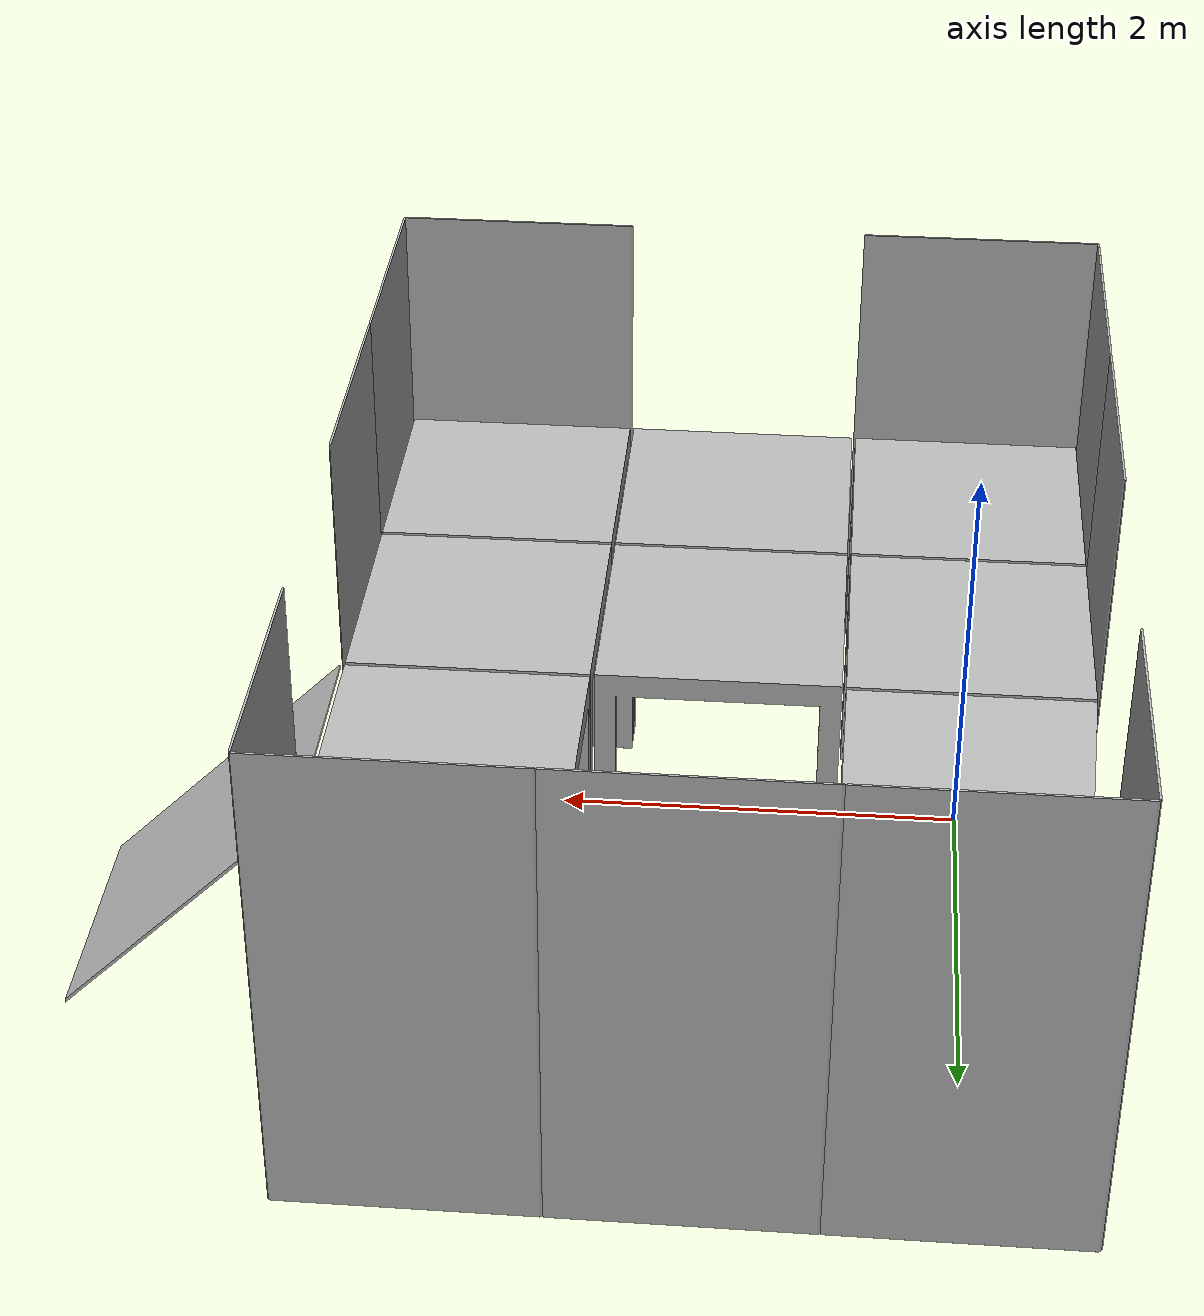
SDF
<sdf version="1.4">
 <world name="default">
  <scene><ambient>0.5 0.5 0.5 1</ambient><background>0.5 0.5 0.5 1</background><shadows>false</shadows></scene>
  <physics type="ode">
   <gravity>0 0 -9.81</gravity>
   <ode>
    <solver><type>quick</type><iters>100</iters><sor>1.3</sor></solver>
    <constraints>
     <cfm>0.0</cfm>
     <erp>0.2</erp>
     <contact_max_correcting_vel>100.0</contact_max_correcting_vel>
     <contact_surface_layer>0.001</contact_surface_layer>
    </constraints>
   </ode>
   <real_time_update_rate>1000</real_time_update_rate>
   <max_step_size>0.001</max_step_size>
  </physics>
  <light type="directional" name="directional_light_1">
   <cast_shadows>false</cast_shadows>
   <pose>0 0 30 0.1 0.1 0</pose>
   <diffuse>1.0 1.0 1.0 1</diffuse>
   <specular>.1 .1 .1 1</specular>
   <attenuation><range>300</range></attenuation>
   <direction>0.1 0.1 -1</direction>
  </light>
  <model name="elevated_floor_120_1">
   <static>true</static>
   <link name="elevated_floor_120_1_link">
    <collision name="elevated_floor_120_1_collision">
     <geometry><mesh><uri>file://elevated_floor_120.dae</uri><scale>1 1 1</scale></mesh></geometry>
    </collision>
    <visual name="elevated_floor_120_1_visual">
     <cast_shadows>false</cast_shadows>
     <geometry><mesh><uri>file://elevated_floor_120.dae</uri><scale>1 1 1</scale></mesh></geometry>
    </visual>
   </link>
  </model>
  <model name="elevated_floor_120_2">
   <static>true</static>
   <link name="elevated_floor_120_2_link">
    <pose>1.2 0 0 0 0 0</pose>
    <collision name="elevated_floor_120_2_collision">
     <geometry><mesh><uri>file://elevated_floor_120.dae</uri><scale>1 1 1</scale></mesh></geometry>
    </collision>
    <visual name="elevated_floor_120_2_visual">
     <cast_shadows>false</cast_shadows>
     <geometry><mesh><uri>file://elevated_floor_120.dae</uri><scale>1 1 1</scale></mesh></geometry>
    </visual>
   </link>
  </model>
  <model name="elevated_floor_120_3">
   <static>true</static>
   <link name="elevated_floor_120_3_link">
    <pose>0 -1.2 0 0 0 0</pose>
    <collision name="elevated_floor_120_3_collision">
     <geometry><mesh><uri>file://elevated_floor_120.dae</uri><scale>1 1 1</scale></mesh></geometry>
    </collision>
    <visual name="elevated_floor_120_3_visual">
     <cast_shadows>false</cast_shadows>
     <geometry><mesh><uri>file://elevated_floor_120.dae</uri><scale>1 1 1</scale></mesh></geometry>
    </visual>
   </link>
  </model>
  <model name="simple_elev_ramp_2">
   <static>true</static>
   <link name="simple_elev_ramp_2_link">
    <pose>0 2.4 0 0 0 0</pose>
    <collision name="simple_elev_ramp_2_collision">
     <geometry><mesh><uri>file://simple_elev_ramp.dae</uri><scale>1 1 1</scale></mesh></geometry>
    </collision>
    <visual name="simple_elev_ramp_2_visual">
     <cast_shadows>false</cast_shadows>
     <geometry><mesh><uri>file://simple_elev_ramp.dae</uri><scale>1 1 1</scale></mesh></geometry>
    </visual>
   </link>
  </model>
  <model name="elevated_floor_120_4">
   <static>true</static>
   <link name="elevated_floor_120_4_link">
    <pose>1.2 2.4 0 0 0 0</pose>
    <collision name="elevated_floor_120_4_collision">
     <geometry><mesh><uri>file://elevated_floor_120.dae</uri><scale>1 1 1</scale></mesh></geometry>
    </collision>
    <visual name="elevated_floor_120_4_visual">
     <cast_shadows>false</cast_shadows>
     <geometry><mesh><uri>file://elevated_floor_120.dae</uri><scale>1 1 1</scale></mesh></geometry>
    </visual>
   </link>
  </model>
  <model name="elevated_floor_120_5">
   <static>true</static>
   <link name="elevated_floor_120_5_link">
    <pose>2.4 2.4 0 0 0 0</pose>
    <collision name="elevated_floor_120_5_collision">
     <geometry><mesh><uri>file://elevated_floor_120.dae</uri><scale>1 1 1</scale></mesh></geometry>
    </collision>
    <visual name="elevated_floor_120_5_visual">
     <cast_shadows>false</cast_shadows>
     <geometry><mesh><uri>file://elevated_floor_120.dae</uri><scale>1 1 1</scale></mesh></geometry>
    </visual>
   </link>
  </model>
  <model name="elevated_floor_120_6">
   <static>true</static>
   <link name="elevated_floor_120_6_link">
    <pose>2.4 1.2 0 0 0 0</pose>
    <collision name="elevated_floor_120_6_collision">
     <geometry><mesh><uri>file://elevated_floor_120.dae</uri><scale>1 1 1</scale></mesh></geometry>
    </collision>
    <visual name="elevated_floor_120_6_visual">
     <cast_shadows>false</cast_shadows>
     <geometry><mesh><uri>file://elevated_floor_120.dae</uri><scale>1 1 1</scale></mesh></geometry>
    </visual>
   </link>
  </model>
  <model name="elevated_floor_120_7">
   <static>true</static>
   <link name="elevated_floor_120_7_link">
    <pose>2.4 0 0 0 0 0</pose>
    <collision name="elevated_floor_120_7_collision">
     <geometry><mesh><uri>file://elevated_floor_120.dae</uri><scale>1 1 1</scale></mesh></geometry>
    </collision>
    <visual name="elevated_floor_120_7_visual">
     <cast_shadows>false</cast_shadows>
     <geometry><mesh><uri>file://elevated_floor_120.dae</uri><scale>1 1 1</scale></mesh></geometry>
    </visual>
   </link>
  </model>
  <model name="elevated_floor_120_8">
   <static>true</static>
   <link name="elevated_floor_120_8_link">
    <pose>2.4 -1.2 0 0 0 0</pose>
    <collision name="elevated_floor_120_8_collision">
     <geometry><mesh><uri>file://elevated_floor_120.dae</uri><scale>1 1 1</scale></mesh></geometry>
    </collision>
    <visual name="elevated_floor_120_8_visual">
     <cast_shadows>false</cast_shadows>
     <geometry><mesh><uri>file://elevated_floor_120.dae</uri><scale>1 1 1</scale></mesh></geometry>
    </visual>
   </link>
  </model>
  <model name="elevated_floor_120_9">
   <static>true</static>
   <link name="elevated_floor_120_9_link">
    <pose>1.2 -1.2 0 0 0 0</pose>
    <collision name="elevated_floor_120_9_collision">
     <geometry><mesh><uri>file://elevated_floor_120.dae</uri><scale>1 1 1</scale></mesh></geometry>
    </collision>
    <visual name="elevated_floor_120_9_visual">
     <cast_shadows>false</cast_shadows>
     <geometry><mesh><uri>file://elevated_floor_120.dae</uri><scale>1 1 1</scale></mesh></geometry>
    </visual>
   </link>
  </model>
  <model name="tall_wall_1">
   <static>true</static>
   <link name="tall_wall_1_link">
    <pose>0 -1.2 0 0 0 -4.71239</pose>
    <collision name="tall_wall_1_collision">
     <geometry><mesh><uri>file://tall_wall.dae</uri><scale>1 1 1</scale></mesh></geometry>
    </collision>
    <visual name="tall_wall_1_visual">
     <cast_shadows>false</cast_shadows>
     <geometry><mesh><uri>file://tall_wall.dae</uri><scale>1 1 1</scale></mesh></geometry>
    </visual>
   </link>
  </model>
  <model name="tall_wall_2">
   <static>true</static>
   <link name="tall_wall_2_link">
    <pose>0 0 0 0 0 -4.71239</pose>
    <collision name="tall_wall_2_collision">
     <geometry><mesh><uri>file://tall_wall.dae</uri><scale>1 1 1</scale></mesh></geometry>
    </collision>
    <visual name="tall_wall_2_visual">
     <cast_shadows>false</cast_shadows>
     <geometry><mesh><uri>file://tall_wall.dae</uri><scale>1 1 1</scale></mesh></geometry>
    </visual>
   </link>
  </model>
  <model name="tall_wall_3">
   <static>true</static>
   <link name="tall_wall_3_link">
    <pose>0 -2.4 0 0 0 0</pose>
    <collision name="tall_wall_3_collision">
     <geometry><mesh><uri>file://tall_wall.dae</uri><scale>1 1 1</scale></mesh></geometry>
    </collision>
    <visual name="tall_wall_3_visual">
     <cast_shadows>false</cast_shadows>
     <geometry><mesh><uri>file://tall_wall.dae</uri><scale>1 1 1</scale></mesh></geometry>
    </visual>
   </link>
  </model>
  <model name="tall_wall_4">
   <static>true</static>
   <link name="tall_wall_4_link">
    <pose>3.6 0 0 0 0 -4.71239</pose>
    <collision name="tall_wall_4_collision">
     <geometry><mesh><uri>file://tall_wall.dae</uri><scale>1 1 1</scale></mesh></geometry>
    </collision>
    <visual name="tall_wall_4_visual">
     <cast_shadows>false</cast_shadows>
     <geometry><mesh><uri>file://tall_wall.dae</uri><scale>1 1 1</scale></mesh></geometry>
    </visual>
   </link>
  </model>
  <model name="tall_wall_5">
   <static>true</static>
   <link name="tall_wall_5_link">
    <pose>3.6 -1.2 0 0 0 -4.71239</pose>
    <collision name="tall_wall_5_collision">
     <geometry><mesh><uri>file://tall_wall.dae</uri><scale>1 1 1</scale></mesh></geometry>
    </collision>
    <visual name="tall_wall_5_visual">
     <cast_shadows>false</cast_shadows>
     <geometry><mesh><uri>file://tall_wall.dae</uri><scale>1 1 1</scale></mesh></geometry>
    </visual>
   </link>
  </model>
  <model name="tall_wall_6">
   <static>true</static>
   <link name="tall_wall_6_link">
    <pose>1.2 2.4 0 0 0 0</pose>
    <collision name="tall_wall_6_collision">
     <geometry><mesh><uri>file://tall_wall.dae</uri><scale>1 1 1</scale></mesh></geometry>
    </collision>
    <visual name="tall_wall_6_visual">
     <cast_shadows>false</cast_shadows>
     <geometry><mesh><uri>file://tall_wall.dae</uri><scale>1 1 1</scale></mesh></geometry>
    </visual>
   </link>
  </model>
  <model name="tall_wall_7">
   <static>true</static>
   <link name="tall_wall_7_link">
    <pose>2.4 2.4 0 0 0 0</pose>
    <collision name="tall_wall_7_collision">
     <geometry><mesh><uri>file://tall_wall.dae</uri><scale>1 1 1</scale></mesh></geometry>
    </collision>
    <visual name="tall_wall_7_visual">
     <cast_shadows>false</cast_shadows>
     <geometry><mesh><uri>file://tall_wall.dae</uri><scale>1 1 1</scale></mesh></geometry>
    </visual>
   </link>
  </model>
  <model name="tall_wall_8">
   <static>true</static>
   <link name="tall_wall_8_link">
    <pose>3.6 2.4 0 0 0 -4.71239</pose>
    <collision name="tall_wall_8_collision">
     <geometry><mesh><uri>file://tall_wall.dae</uri><scale>1 1 1</scale></mesh></geometry>
    </collision>
    <visual name="tall_wall_8_visual">
     <cast_shadows>false</cast_shadows>
     <geometry><mesh><uri>file://tall_wall.dae</uri><scale>1 1 1</scale></mesh></geometry>
    </visual>
   </link>
  </model>
  <model name="tall_wall_9">
   <static>true</static>
   <link name="tall_wall_9_link">
    <pose>0 2.4 0 0 0 0</pose>
    <collision name="tall_wall_9_collision">
     <geometry><mesh><uri>file://tall_wall.dae</uri><scale>1 1 1</scale></mesh></geometry>
    </collision>
    <visual name="tall_wall_9_visual">
     <cast_shadows>false</cast_shadows>
     <geometry><mesh><uri>file://tall_wall.dae</uri><scale>1 1 1</scale></mesh></geometry>
    </visual>
   </link>
  </model>
  <model name="tall_wall_10">
   <static>true</static>
   <link name="tall_wall_10_link">
    <pose>-1.2 2.4 0 0 0 -1.5708</pose>
    <collision name="tall_wall_10_collision">
     <geometry><mesh><uri>file://tall_wall.dae</uri><scale>1 1 1</scale></mesh></geometry>
    </collision>
    <visual name="tall_wall_10_visual">
     <cast_shadows>false</cast_shadows>
     <geometry><mesh><uri>file://tall_wall.dae</uri><scale>1 1 1</scale></mesh></geometry>
    </visual>
   </link>
  </model>
  <model name="tall_wall_11">
   <static>true</static>
   <link name="tall_wall_11_link">
    <pose>2.4 -1.2 0 0 0 -3.14159</pose>
    <collision name="tall_wall_11_collision">
     <geometry><mesh><uri>file://tall_wall.dae</uri><scale>1 1 1</scale></mesh></geometry>
    </collision>
    <visual name="tall_wall_11_visual">
     <cast_shadows>false</cast_shadows>
     <geometry><mesh><uri>file://tall_wall.dae</uri><scale>1 1 1</scale></mesh></geometry>
    </visual>
   </link>
  </model>
  <model name="simple_elev_ramp_3">
   <static>true</static>
   <link name="simple_elev_ramp_3_link">
    <pose>1.2 1.2 0 0 0 0</pose>
    <collision name="simple_elev_ramp_3_collision">
     <geometry><mesh><uri>file://simple_elev_ramp.dae</uri><scale>1 1 1</scale></mesh></geometry>
    </collision>
    <visual name="simple_elev_ramp_3_visual">
     <cast_shadows>false</cast_shadows>
     <geometry><mesh><uri>file://simple_elev_ramp.dae</uri><scale>1 1 1</scale></mesh></geometry>
    </visual>
   </link>
  </model>
  <model name="simple_elev_ramp_4">
   <static>true</static>
   <link name="simple_elev_ramp_4_link">
    <pose>0 1.2 0 0 0 -3.14159</pose>
    <collision name="simple_elev_ramp_4_collision">
     <geometry><mesh><uri>file://simple_elev_ramp.dae</uri><scale>1 1 1</scale></mesh></geometry>
    </collision>
    <visual name="simple_elev_ramp_4_visual">
     <cast_shadows>false</cast_shadows>
     <geometry><mesh><uri>file://simple_elev_ramp.dae</uri><scale>1 1 1</scale></mesh></geometry>
    </visual>
   </link>
  </model>
  <model name="simple_elev_ramp_5">
   <static>true</static>
   <link name="simple_elev_ramp_5_link">
    <pose>3.6 1.2 0 0 0 -4.71239</pose>
    <collision name="simple_elev_ramp_5_collision">
     <geometry><mesh><uri>file://simple_elev_ramp.dae</uri><scale>1 1 1</scale></mesh></geometry>
    </collision>
    <visual name="simple_elev_ramp_5_visual">
     <cast_shadows>false</cast_shadows>
     <geometry><mesh><uri>file://simple_elev_ramp.dae</uri><scale>1 1 1</scale></mesh></geometry>
    </visual>
   </link>
  </model>
 </world>
</sdf>
